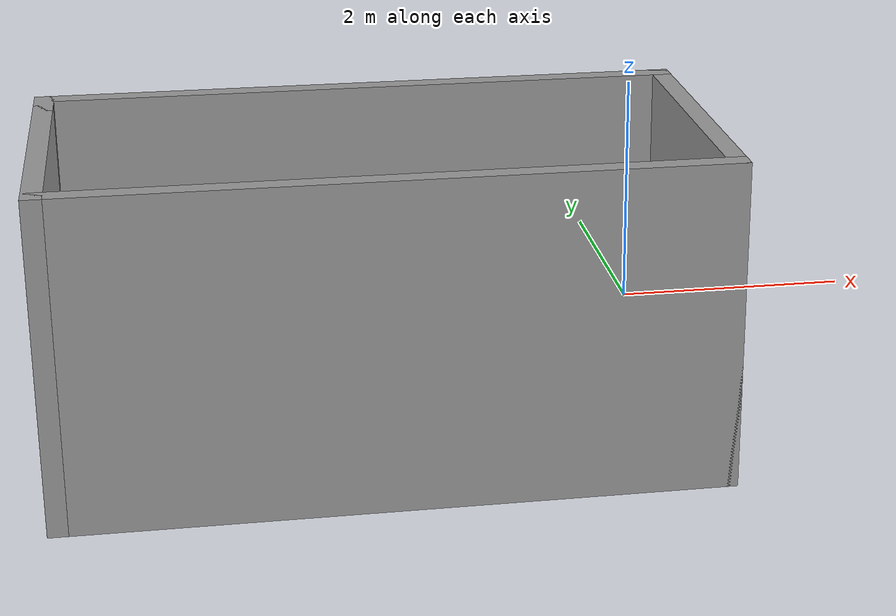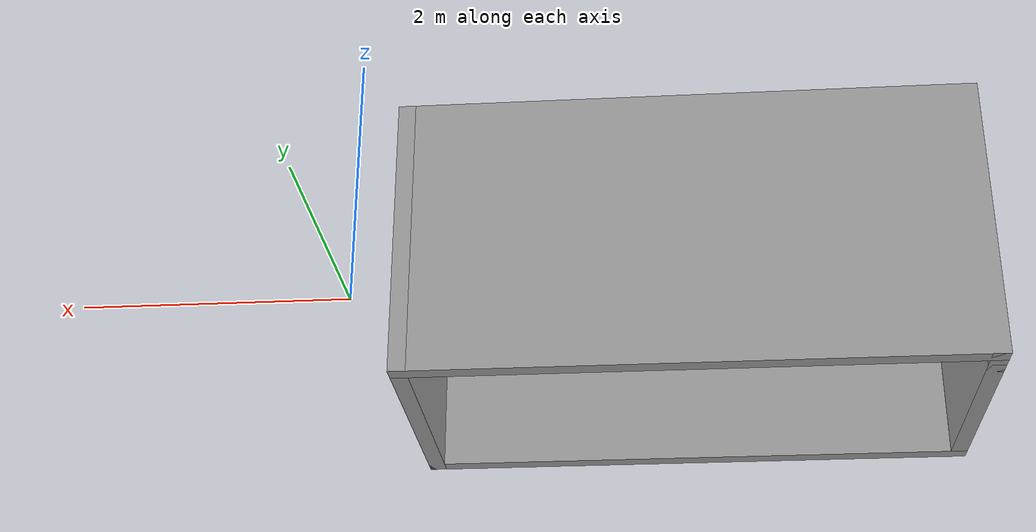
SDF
<?xml version='1.0'?>
<sdf version='1.7'>
  <model name='square_room'>
    <pose>-2.5125 -1.9575 0 0 -0 0</pose>
    <link name='Wall_0'>
      <collision name='Wall_0_Collision'>
        <geometry>
          <box>
            <size>2.25 0.15 2.5</size>
          </box>
        </geometry>
        <pose>0 0 1.25 0 -0 0</pose>
      </collision>
      <visual name='Wall_0_Visual'>
        <pose>0 0 1.25 0 -0 0</pose>
        <geometry>
          <box>
            <size>2.25 0.15 2.5</size>
          </box>
        </geometry>
        <material>
          <script>
            <uri>file://media/materials/scripts/gazebo.material</uri>
            <name>Gazebo/Grey</name>
          </script>
          <ambient>1 1 1 1</ambient>
        </material>
        <meta>
          <layer>0</layer>
        </meta>
      </visual>
      <pose>-2.4375 -0.8325 0 0 -0 -1.5708</pose>
    </link>
    <link name='Wall_1'>
      <collision name='Wall_1_Collision'>
        <geometry>
          <box>
            <size>5 0.15 2.5</size>
          </box>
        </geometry>
        <pose>0 0 1.25 0 -0 0</pose>
      </collision>
      <visual name='Wall_1_Visual'>
        <pose>0 0 1.25 0 -0 0</pose>
        <geometry>
          <box>
            <size>5 0.15 2.5</size>
          </box>
        </geometry>
        <material>
          <script>
            <uri>file://media/materials/scripts/gazebo.material</uri>
            <name>Gazebo/Grey</name>
          </script>
          <ambient>1 1 1 1</ambient>
        </material>
        <meta>
          <layer>0</layer>
        </meta>
      </visual>
      <pose>-0.0125 -1.8825 0 0 -0 0</pose>
    </link>
    <link name='Wall_2'>
      <collision name='Wall_2_Collision'>
        <geometry>
          <box>
            <size>2.5 0.15 2.5</size>
          </box>
        </geometry>
        <pose>0 0 1.25 0 -0 0</pose>
      </collision>
      <visual name='Wall_2_Visual'>
        <pose>0 0 1.25 0 -0 0</pose>
        <geometry>
          <box>
            <size>2.5 0.15 2.5</size>
          </box>
        </geometry>
        <material>
          <script>
            <uri>file://media/materials/scripts/gazebo.material</uri>
            <name>Gazebo/Grey</name>
          </script>
          <ambient>1 1 1 1</ambient>
        </material>
        <meta>
          <layer>0</layer>
        </meta>
      </visual>
      <pose>2.4125 -0.7075 0 0 -0 1.5708</pose>
    </link>
    <link name='Wall_3'>
      <collision name='Wall_3_Collision'>
        <geometry>
          <box>
            <size>5 0.15 2.5</size>
          </box>
        </geometry>
        <pose>0 0 1.25 0 -0 0</pose>
      </collision>
      <visual name='Wall_3_Visual'>
        <pose>0 0 1.25 0 -0 0</pose>
        <geometry>
          <box>
            <size>5 0.15 2.5</size>
          </box>
        </geometry>
        <material>
          <script>
            <uri>file://media/materials/scripts/gazebo.material</uri>
            <name>Gazebo/Grey</name>
          </script>
          <ambient>1 1 1 1</ambient>
        </material>
        <meta>
          <layer>0</layer>
        </meta>
      </visual>
      <pose>-0.0125 0.4675 0 0 -0 3.14159</pose>
    </link>
    <link name='Wall_4'>
      <collision name='Wall_4_Collision'>
        <geometry>
          <box>
            <size>0.4 0.15 2.5</size>
          </box>
        </geometry>
        <pose>0 0 1.25 0 -0 0</pose>
      </collision>
      <visual name='Wall_4_Visual'>
        <pose>0 0 1.25 0 -0 0</pose>
        <geometry>
          <box>
            <size>0.4 0.15 2.5</size>
          </box>
        </geometry>
        <material>
          <script>
            <uri>file://media/materials/scripts/gazebo.material</uri>
            <name>Gazebo/Grey</name>
          </script>
          <ambient>1 1 1 1</ambient>
        </material>
        <meta>
          <layer>0</layer>
        </meta>
      </visual>
      <pose>-2.4375 0.3425 0 0 -0 -1.5708</pose>
    </link>
    <static>1</static>
  </model>
</sdf>
